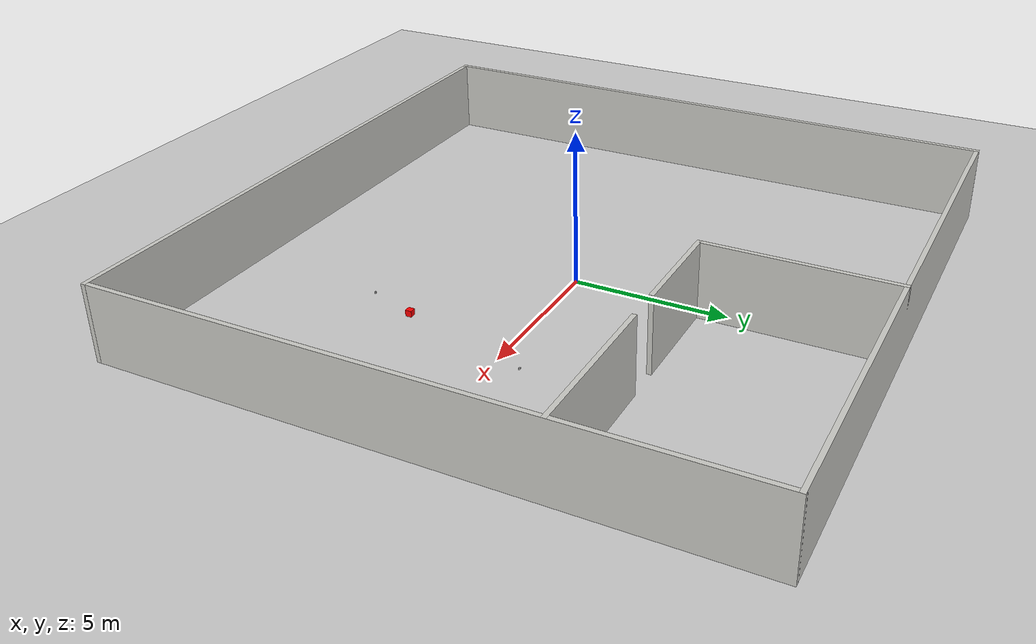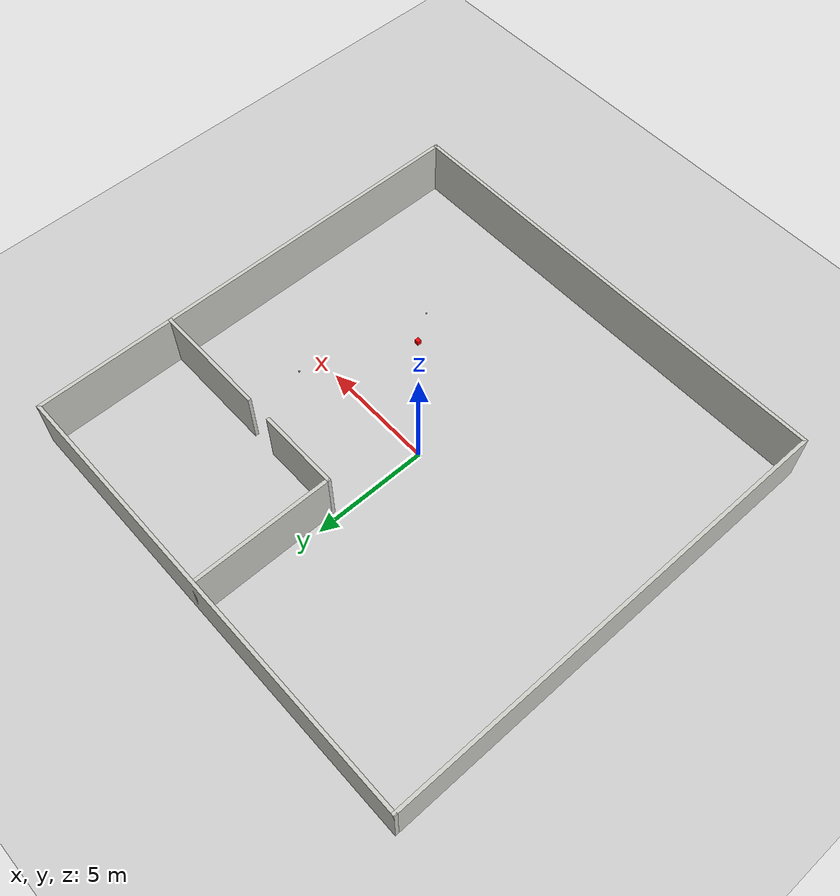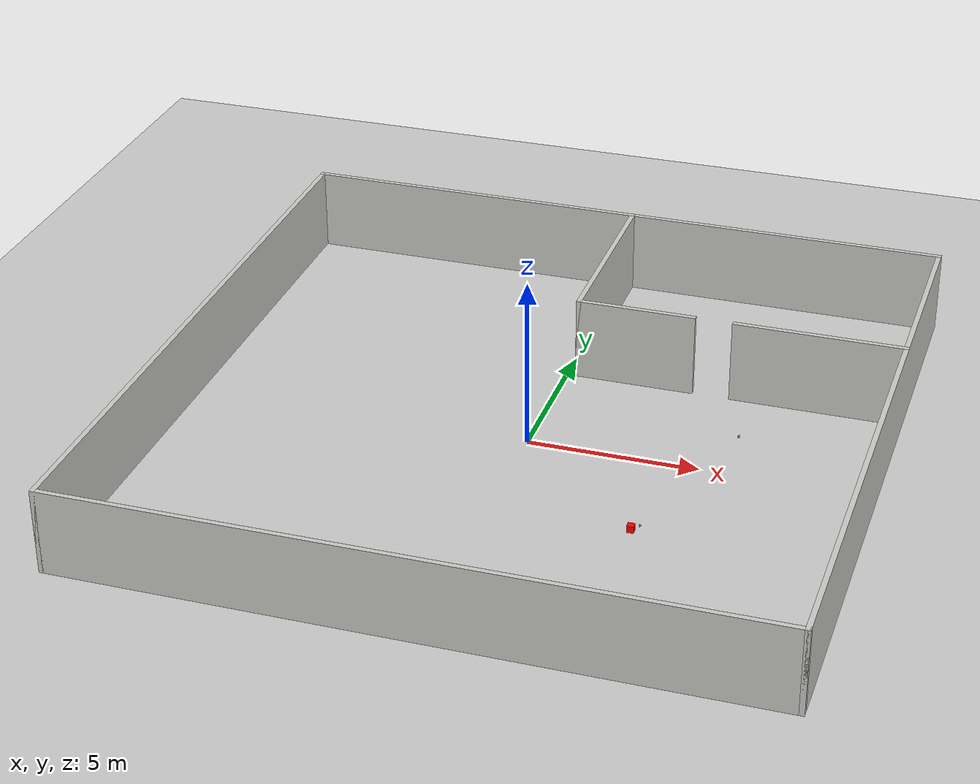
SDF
<sdf version="1.7">
 <world name="default">
  <model name="ground_plane">
   <static>1</static>
   <link name="link">
    <collision name="collision">
     <geometry><plane><normal>0 0 1</normal><size>100 100</size></plane></geometry>
     <surface>
      <contact><collide_bitmask>65535</collide_bitmask></contact>
      <friction><ode><mu>100</mu><mu2>50</mu2></ode></friction>
     </surface>
    </collision>
    <visual name="visual">
     <cast_shadows>0</cast_shadows>
     <geometry><plane><normal>0 0 1</normal><size>100 100</size></plane></geometry>
     <material>
      <script><uri>file://media/materials/scripts/gazebo.material</uri><name>Gazebo/Grey</name></script>
     </material>
    </visual>
   </link>
  </model>
  <model name="room">
   <pose>-0.081465 0.097614 0 0 -0 0</pose>
   <link name="Wall_21">
    <collision name="Wall_21_Collision">
     <geometry><box><size>20.15 0.15 2.5</size></box></geometry>
     <pose>0 0 1.25 0 -0 0</pose>
    </collision>
    <visual name="Wall_21_Visual">
     <pose>0 0 1.25 0 -0 0</pose>
     <geometry><box><size>20.15 0.15 2.5</size></box></geometry>
     <material>
      <script><uri>file://media/materials/scripts/gazebo.material</uri><name>Gazebo/CeilingTiled</name></script>
      <ambient>1 1 1 1</ambient>
     </material>
     <meta><layer>0</layer></meta>
    </visual>
    <pose>0 10 0 0 -0 0</pose>
   </link>
   <link name="Wall_37">
    <collision name="Wall_37_Collision">
     <geometry><box><size>5.09 0.15 2.5</size></box></geometry>
     <pose>0 0 1.25 0 -0 0</pose>
    </collision>
    <visual name="Wall_37_Visual">
     <pose>0 0 1.25 0 -0 0</pose>
     <geometry><box><size>5.09 0.15 2.5</size></box></geometry>
     <material>
      <script><uri>file://media/materials/scripts/gazebo.material</uri><name>Gazebo/CeilingTiled</name></script>
      <ambient>1 1 1 1</ambient>
     </material>
     <meta><layer>0</layer></meta>
    </visual>
    <pose>7.53 4 0 0 -0 3.14159</pose>
   </link>
   <link name="Wall_39">
    <collision name="Wall_39_Collision">
     <geometry><box><size>3.57 0.15 2.5</size></box></geometry>
     <pose>0 0 1.25 0 -0 0</pose>
    </collision>
    <visual name="Wall_39_Visual">
     <pose>0 0 1.25 0 -0 0</pose>
     <geometry><box><size>3.57 0.15 2.5</size></box></geometry>
     <material>
      <script><uri>file://media/materials/scripts/gazebo.material</uri><name>Gazebo/CeilingTiled</name></script>
      <ambient>1 1 1 1</ambient>
     </material>
     <meta><layer>0</layer></meta>
    </visual>
    <pose>2.11 4 0 0 -0 0</pose>
   </link>
   <link name="Wall_41">
    <collision name="Wall_41_Collision">
     <geometry><box><size>20.15 0.15 2.5</size></box></geometry>
     <pose>0 0 1.25 0 -0 0</pose>
    </collision>
    <visual name="Wall_41_Visual">
     <pose>0 0 1.25 0 -0 0</pose>
     <geometry><box><size>20.15 0.15 2.5</size></box></geometry>
     <material>
      <script><uri>file://media/materials/scripts/gazebo.material</uri><name>Gazebo/CeilingTiled</name></script>
      <ambient>1 1 1 1</ambient>
     </material>
     <meta><layer>0</layer></meta>
    </visual>
    <pose>-10 0 0 0 -0 -1.5708</pose>
   </link>
   <link name="Wall_43">
    <collision name="Wall_43_Collision">
     <geometry><box><size>20.15 0.15 2.5</size></box></geometry>
     <pose>0 0 1.25 0 -0 0</pose>
    </collision>
    <visual name="Wall_43_Visual">
     <pose>0 0 1.25 0 -0 0</pose>
     <geometry><box><size>20.15 0.15 2.5</size></box></geometry>
     <material>
      <script><uri>file://media/materials/scripts/gazebo.material</uri><name>Gazebo/CeilingTiled</name></script>
      <ambient>1 1 1 1</ambient>
     </material>
     <meta><layer>0</layer></meta>
    </visual>
    <pose>0 -10 0 0 -0 0</pose>
   </link>
   <link name="Wall_45">
    <collision name="Wall_45_Collision">
     <geometry><box><size>20.15 0.15 2.5</size></box></geometry>
     <pose>0 0 1.25 0 -0 0</pose>
    </collision>
    <visual name="Wall_45_Visual">
     <pose>0 0 1.25 0 -0 0</pose>
     <geometry><box><size>20.15 0.15 2.5</size></box></geometry>
     <material>
      <script><uri>file://media/materials/scripts/gazebo.material</uri><name>Gazebo/CeilingTiled</name></script>
      <ambient>1 1 1 1</ambient>
     </material>
     <meta><layer>0</layer></meta>
    </visual>
    <pose>10 0 0 0 -0 -1.5708</pose>
   </link>
   <link name="Wall_47">
    <collision name="Wall_47_Collision">
     <geometry><box><size>6.15 0.15 2.5</size></box></geometry>
     <pose>0 0 1.25 0 -0 0</pose>
    </collision>
    <visual name="Wall_47_Visual">
     <pose>0 0 1.25 0 -0 0</pose>
     <geometry><box><size>6.15 0.15 2.5</size></box></geometry>
     <material>
      <script><uri>file://media/materials/scripts/gazebo.material</uri><name>Gazebo/CeilingTiled</name></script>
      <ambient>1 1 1 1</ambient>
     </material>
     <meta><layer>0</layer></meta>
    </visual>
    <pose>0.4 7 0 0 -0 1.5708</pose>
   </link>
   <static>1</static>
  </model>
  <model name="apriltag_5x5x5">
   <link name="link">
    <pose>0 0 0.025 0 -0 0</pose>
    <inertial>
     <mass>0.05</mass>
     <inertia>
      <ixx>2.0833e-05</ixx>
      <ixy>0</ixy>
      <ixz>0</ixz>
      <iyy>2.0833e-05</iyy>
      <iyz>0</iyz>
      <izz>2.0833e-05</izz>
     </inertia>
    </inertial>
    <collision name="collision"><geometry><box><size>0.05 0.05 0.05</size></box></geometry></collision>
    <visual name="visual">
     <geometry><box><size>0.05 0.05 0.05</size></box></geometry>
     <material>
      <script>
       <uri>model://apriltag_5x5x5/materials/scripts</uri>
       <uri>model://apriltag_5x5x5/materials/textures</uri>
       <name>apriltag_5x5x5/Diffuse</name>
      </script>
     </material>
    </visual>
   </link>
   <pose>4.44888 -4.39856 0.774998 8e-05 -1e-05 -3.4e-05</pose>
  </model>
  <model name="cube_r">
   <link name="link_2">
    <pose>0 0 0.1 0 -0 0</pose>
    <inertial>
     <mass>1</mass>
     <inertia>
      <ixx>0.166667</ixx>
      <ixy>0</ixy>
      <ixz>0</ixz>
      <iyy>0.166667</iyy>
      <iyz>0</iyz>
      <izz>0.166667</izz>
     </inertia>
    </inertial>
    <visual name="visual">
     <geometry><box><size>0.2 0.2 0.2</size></box></geometry>
     <material>
      <lighting>1</lighting>
      <script><uri>file://media/materials/scripts/gazebo.material</uri><name>Gazebo/Grey</name></script>
      <ambient>1 0 0 1</ambient>
      <diffuse>1 0 0 1</diffuse>
      <specular>0 0 0 1</specular>
      <emissive>0 0 0 1</emissive>
      <shader type="vertex"><normal_map>__default__</normal_map></shader>
     </material>
    </visual>
    <collision name="collision">
     <geometry><box><size>0.2 0.2 0.2</size></box></geometry>
     <surface>
      <friction>
       <ode><mu>1</mu><mu2>1</mu2><fdir1>0 0 0</fdir1><slip1>0</slip1><slip2>0</slip2></ode>
       <torsional>
        <coefficient>1</coefficient>
        <patch_radius>0</patch_radius>
        <surface_radius>0</surface_radius>
        <use_patch_radius>1</use_patch_radius>
        <ode><slip>0</slip></ode>
       </torsional>
      </friction>
      <bounce><restitution_coefficient>0</restitution_coefficient><threshold>1e+06</threshold></bounce>
      <contact>
       <collide_without_contact>0</collide_without_contact>
       <collide_without_contact_bitmask>1</collide_without_contact_bitmask>
       <collide_bitmask>1</collide_bitmask>
       <ode>
        <soft_cfm>0</soft_cfm>
        <soft_erp>0.2</soft_erp>
        <kp>1e+13</kp>
        <kd>1</kd>
        <max_vel>0.01</max_vel>
        <min_depth>0</min_depth>
       </ode>
       <bullet>
        <split_impulse>1</split_impulse>
        <split_impulse_penetration_threshold>-0.01</split_impulse_penetration_threshold>
        <soft_cfm>0</soft_cfm>
        <soft_erp>0.2</soft_erp>
        <kp>1e+13</kp>
        <kd>1</kd>
       </bullet>
      </contact>
     </surface>
    </collision>
   </link>
   <static>1</static>
   <pose>3.99387 -3.54268 0 0 -0 0</pose>
  </model>
  <model name="apriltag_5x5x5_0">
   <link name="link">
    <pose>0 0 0.025 0 -0 0</pose>
    <inertial>
     <mass>0.05</mass>
     <inertia>
      <ixx>2.0833e-05</ixx>
      <ixy>0</ixy>
      <ixz>0</ixz>
      <iyy>2.0833e-05</iyy>
      <iyz>0</iyz>
      <izz>2.0833e-05</izz>
     </inertia>
    </inertial>
    <collision name="collision"><geometry><box><size>0.05 0.05 0.05</size></box></geometry></collision>
    <visual name="visual">
     <geometry><box><size>0.05 0.05 0.05</size></box></geometry>
     <material>
      <script>
       <uri>model://apriltag_5x5x5/materials/scripts</uri>
       <uri>model://apriltag_5x5x5/materials/textures</uri>
       <name>apriltag_5x5x5/Diffuse</name>
      </script>
     </material>
    </visual>
   </link>
   <pose>5.83444 1.17969 0.52 0 -0 0</pose>
  </model>
 </world>
</sdf>
